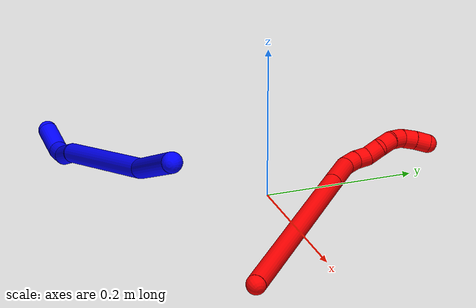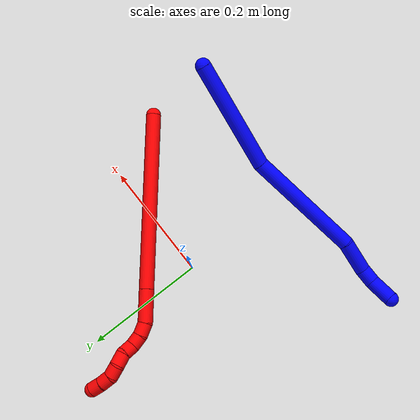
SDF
<sdf version="1.7">
 <world name="default">
  <plugin name="TubeGeneratorPlugin" filename="libtube_generator_plugin.so"/>
  <model name="photoneo_s_sensor">
   <static>1</static>
   <pose>0 0 2 1.57079 1.57079 3.14159</pose>
   <link name="link">
    <inertial><mass>0.1</mass></inertial>
    <sensor name="sensor" type="depth">
     <update_rate>30</update_rate>
     <camera>
      <horizontal_fov>1.22</horizontal_fov>
      <image><width>1920</width><height>1200</height><format>B8G8R8</format></image>
      <clip><near>0.1</near><far>4</far></clip>
      <depth_camera><output>points</output></depth_camera>
     </camera>
     <plugin name="camera_plugin" filename="libgazebo_ros_depth_camera.so">
      <baseline>0.2</baseline>
      <alwaysOn>1</alwaysOn>
      <updateRate>0.0</updateRate>
      <cameraName>camera_ir</cameraName>
      <imageTopicName>/camera/color/image_raw</imageTopicName>
      <cameraInfoTopicName>/camera/color/camera_info</cameraInfoTopicName>
      <depthImageTopicName>/camera/depth/image_raw</depthImageTopicName>
      <depthImageCameraInfoTopicName>/camera/depth/camera_info</depthImageCameraInfoTopicName>
      <pointCloudTopicName>/camera/depth/points</pointCloudTopicName>
      <frameName>fr_optical</frameName>
      <pointCloudCutoff>0.1</pointCloudCutoff>
      <pointCloudCutoffMax>2.0</pointCloudCutoffMax>
      <distortionK1>0</distortionK1>
      <distortionK2>0</distortionK2>
      <distortionK3>0</distortionK3>
      <distortionT1>0</distortionT1>
      <distortionT2>0</distortionT2>
      <CxPrime>0</CxPrime>
      <Cx>0</Cx>
      <Cy>0</Cy>
      <focalLength>0</focalLength>
      <hackBaseline>0</hackBaseline>
     </plugin>
    </sensor>
   </link>
  </model>
  <gravity>0 0 -9.8</gravity>
  <magnetic_field>6e-06 2.3e-05 -4.2e-05</magnetic_field>
  <atmosphere type="adiabatic"/>
  <physics name="default_physics" default="0" type="ode">
   <max_step_size>0.003</max_step_size>
   <real_time_factor>1</real_time_factor>
   <real_time_update_rate>1000</real_time_update_rate>
   <max_contacts>10000</max_contacts>
   <ode>
    <solver>
     <type>quick</type>
     <iters>100</iters>
     <sor>1.3</sor>
     <use_dynamic_moi_rescaling>0</use_dynamic_moi_rescaling>
    </solver>
    <constraints>
     <contact_max_correcting_vel>0</contact_max_correcting_vel>
     <contact_surface_layer>0.001</contact_surface_layer>
     <cfm>0</cfm>
     <erp>0.2</erp>
    </constraints>
   </ode>
  </physics>
  <scene><ambient>0.4 0.4 0.4 1</ambient><background>0.7 0.7 0.7 1</background><shadows>0</shadows></scene>
  <audio><device>default</device></audio>
  <spherical_coordinates>
   <surface_model>EARTH_WGS84</surface_model>
   <latitude_deg>0</latitude_deg>
   <longitude_deg>0</longitude_deg>
   <elevation>0</elevation>
   <heading_deg>0</heading_deg>
  </spherical_coordinates>
  <model name="bin">
   <static>1</static>
   <link name="bottom">
    <collision name="collision-bottom">
     <pose>0 0 -0.01 0 -0 0</pose>
     <geometry><box><size>0.8 0.6 0.02</size></box></geometry>
     <surface>
      <friction><ode><mu>100</mu><mu2>100</mu2></ode></friction>
      <contact><collide_bitmask>65535</collide_bitmask></contact>
     </surface>
    </collision>
   </link>
   <link name="west_wall">
    <collision name="collision-west_wall">
     <pose>-0.41 0 0.1 0 -0 0</pose>
     <geometry><box><size>0.02 0.6 0.2</size></box></geometry>
     <surface>
      <friction><ode><mu>100</mu><mu2>100</mu2></ode></friction>
      <contact><collide_bitmask>65535</collide_bitmask></contact>
     </surface>
    </collision>
   </link>
   <link name="east_wall">
    <collision name="collision-east_wall">
     <pose>0.41 0 0.1 0 -0 0</pose>
     <geometry><box><size>0.02 0.6 0.2</size></box></geometry>
     <surface>
      <friction><ode><mu>100</mu><mu2>100</mu2></ode></friction>
      <contact><collide_bitmask>65535</collide_bitmask></contact>
     </surface>
    </collision>
   </link>
   <link name="south_wall">
    <collision name="collision-south_wall">
     <pose>0 -0.31 0.1 0 -0 0</pose>
     <geometry><box><size>0.8 0.02 0.2</size></box></geometry>
     <surface>
      <friction><ode><mu>100</mu><mu2>100</mu2></ode></friction>
      <contact><collide_bitmask>65535</collide_bitmask></contact>
     </surface>
    </collision>
   </link>
   <link name="north_wall">
    <collision name="collision-north_wall">
     <pose>0 0.31 0.1 0 -0 0</pose>
     <geometry><box><size>0.8 0.02 0.2</size></box></geometry>
     <surface>
      <friction><ode><mu>100</mu><mu2>100</mu2></ode></friction>
      <contact><collide_bitmask>65535</collide_bitmask></contact>
     </surface>
    </collision>
   </link>
  </model>
  <model name="1">
   <static>0</static>
   <link name="1">
    <collision name="collision-cylinder-e_1_1_4">
     <pose>-0.044756 -0.009251 -0.078115 3.02371 -0.517293 -2.70271</pose>
     <geometry><cylinder><radius>0.0125</radius><length>0.181003</length></cylinder></geometry>
     <surface>
      <friction><ode><mu>1.16</mu><mu2>1.16</mu2><slip1>0</slip1><slip2>0</slip2></ode></friction>
      <contact><ode><kp>1e+06</kp><kd>1</kd><max_vel>0</max_vel><min_depth>0.001</min_depth></ode></contact>
     </surface>
    </collision>
    <visual name="visual-cylinder-e_1_1_4">
     <pose>-0.044756 -0.009251 -0.078115 3.02371 -0.517293 -2.70271</pose>
     <geometry><cylinder><radius>0.0125</radius><length>0.181003</length></cylinder></geometry>
     <material><ambient>0 0 1 1</ambient></material>
    </visual>
    <collision name="collision-cylinder-e_2_4_5">
     <pose>-0.15523 -0.007754 -0.226073 -2.98891 -0.749138 2.75726</pose>
     <geometry><cylinder><radius>0.0125</radius><length>0.193005</length></cylinder></geometry>
     <surface>
      <friction><ode><mu>1.16</mu><mu2>1.16</mu2><slip1>0</slip1><slip2>0</slip2></ode></friction>
      <contact><ode><kp>1e+06</kp><kd>1</kd><max_vel>0</max_vel><min_depth>0.001</min_depth></ode></contact>
     </surface>
    </collision>
    <visual name="visual-cylinder-e_2_4_5">
     <pose>-0.15523 -0.007754 -0.226073 -2.98891 -0.749138 2.75726</pose>
     <geometry><cylinder><radius>0.0125</radius><length>0.193005</length></cylinder></geometry>
     <material><ambient>0 0 1 1</ambient></material>
    </visual>
    <collision name="collision-cylinder-e_3_5_6">
     <pose>-0.235871 0.000175 -0.319602 3.02316 -0.559051 -2.73424</pose>
     <geometry><cylinder><radius>0.0125</radius><length>0.056269</length></cylinder></geometry>
     <surface>
      <friction><ode><mu>1.16</mu><mu2>1.16</mu2><slip1>0</slip1><slip2>0</slip2></ode></friction>
      <contact><ode><kp>1e+06</kp><kd>1</kd><max_vel>0</max_vel><min_depth>0.001</min_depth></ode></contact>
     </surface>
    </collision>
    <visual name="visual-cylinder-e_3_5_6">
     <pose>-0.235871 0.000175 -0.319602 3.02316 -0.559051 -2.73424</pose>
     <geometry><cylinder><radius>0.0125</radius><length>0.056269</length></cylinder></geometry>
     <material><ambient>0 0 1 1</ambient></material>
    </visual>
    <collision name="collision-cylinder-e_4_6_7">
     <pose>-0.258182 0.000309 -0.354478 -2.8837 -0.56812 2.30568</pose>
     <geometry><cylinder><radius>0.0125</radius><length>0.027464</length></cylinder></geometry>
     <surface>
      <friction><ode><mu>1.16</mu><mu2>1.16</mu2><slip1>0</slip1><slip2>0</slip2></ode></friction>
      <contact><ode><kp>1e+06</kp><kd>1</kd><max_vel>0</max_vel><min_depth>0.001</min_depth></ode></contact>
     </surface>
    </collision>
    <visual name="visual-cylinder-e_4_6_7">
     <pose>-0.258182 0.000309 -0.354478 -2.8837 -0.56812 2.30568</pose>
     <geometry><cylinder><radius>0.0125</radius><length>0.027464</length></cylinder></geometry>
     <material><ambient>0 0 1 1</ambient></material>
    </visual>
    <collision name="collision-cylinder-e_5_7_2">
     <pose>-0.2745 0.016632 -0.379379 -2.36867 -0.436311 0.997654</pose>
     <geometry><cylinder><radius>0.0125</radius><length>0.042259</length></cylinder></geometry>
     <surface>
      <friction><ode><mu>1.16</mu><mu2>1.16</mu2><slip1>0</slip1><slip2>0</slip2></ode></friction>
      <contact><ode><kp>1e+06</kp><kd>1</kd><max_vel>0</max_vel><min_depth>0.001</min_depth></ode></contact>
     </surface>
    </collision>
    <visual name="visual-cylinder-e_5_7_2">
     <pose>-0.2745 0.016632 -0.379379 -2.36867 -0.436311 0.997654</pose>
     <geometry><cylinder><radius>0.0125</radius><length>0.042259</length></cylinder></geometry>
     <material><ambient>0 0 1 1</ambient></material>
    </visual>
    <collision name="collision-sphere-2">
     <pose>-0.283429 0.030003 -0.393088 0 -0 0</pose>
     <geometry><sphere><radius>0.0125</radius></sphere></geometry>
     <surface>
      <friction><ode><mu>1.16</mu><mu2>1.16</mu2><slip1>0</slip1><slip2>0</slip2></ode></friction>
      <contact><ode><kp>1e+06</kp><kd>1</kd><max_vel>0</max_vel><min_depth>0.001</min_depth></ode></contact>
     </surface>
    </collision>
    <visual name="visual-sphere-2">
     <pose>-0.283429 0.030003 -0.393088 0 -0 0</pose>
     <geometry><sphere><radius>0.0125</radius></sphere></geometry>
     <material><ambient>0 0 1 1</ambient></material>
    </visual>
    <collision name="collision-sphere-7">
     <pose>-0.26557 0.003261 -0.36567 0 -0 0</pose>
     <geometry><sphere><radius>0.0125</radius></sphere></geometry>
     <surface>
      <friction><ode><mu>1.16</mu><mu2>1.16</mu2><slip1>0</slip1><slip2>0</slip2></ode></friction>
      <contact><ode><kp>1e+06</kp><kd>1</kd><max_vel>0</max_vel><min_depth>0.001</min_depth></ode></contact>
     </surface>
    </collision>
    <visual name="visual-sphere-7">
     <pose>-0.26557 0.003261 -0.36567 0 -0 0</pose>
     <geometry><sphere><radius>0.0125</radius></sphere></geometry>
     <material><ambient>0 0 1 1</ambient></material>
    </visual>
    <collision name="collision-sphere-6">
     <pose>-0.250793 -0.002643 -0.343286 0 -0 0</pose>
     <geometry><sphere><radius>0.0125</radius></sphere></geometry>
     <surface>
      <friction><ode><mu>1.16</mu><mu2>1.16</mu2><slip1>0</slip1><slip2>0</slip2></ode></friction>
      <contact><ode><kp>1e+06</kp><kd>1</kd><max_vel>0</max_vel><min_depth>0.001</min_depth></ode></contact>
     </surface>
    </collision>
    <visual name="visual-sphere-6">
     <pose>-0.250793 -0.002643 -0.343286 0 -0 0</pose>
     <geometry><sphere><radius>0.0125</radius></sphere></geometry>
     <material><ambient>0 0 1 1</ambient></material>
    </visual>
    <collision name="collision-sphere-5">
     <pose>-0.220949 0.002993 -0.295918 0 -0 0</pose>
     <geometry><sphere><radius>0.0125</radius></sphere></geometry>
     <surface>
      <friction><ode><mu>1.16</mu><mu2>1.16</mu2><slip1>0</slip1><slip2>0</slip2></ode></friction>
      <contact><ode><kp>1e+06</kp><kd>1</kd><max_vel>0</max_vel><min_depth>0.001</min_depth></ode></contact>
     </surface>
    </collision>
    <visual name="visual-sphere-5">
     <pose>-0.220949 0.002993 -0.295918 0 -0 0</pose>
     <geometry><sphere><radius>0.0125</radius></sphere></geometry>
     <material><ambient>0 0 1 1</ambient></material>
    </visual>
    <collision name="collision-sphere-1">
     <geometry><sphere><radius>0.0125</radius></sphere></geometry>
     <surface>
      <friction><ode><mu>1.16</mu><mu2>1.16</mu2><slip1>0</slip1><slip2>0</slip2></ode></friction>
      <contact><ode><kp>1e+06</kp><kd>1</kd><max_vel>0</max_vel><min_depth>0.001</min_depth></ode></contact>
     </surface>
    </collision>
    <visual name="visual-sphere-1">
     <geometry><sphere><radius>0.0125</radius></sphere></geometry>
     <material><ambient>0 0 1 1</ambient></material>
    </visual>
    <collision name="collision-sphere-4">
     <pose>-0.089511 -0.018502 -0.156229 0 -0 0</pose>
     <geometry><sphere><radius>0.0125</radius></sphere></geometry>
     <surface>
      <friction><ode><mu>1.16</mu><mu2>1.16</mu2><slip1>0</slip1><slip2>0</slip2></ode></friction>
      <contact><ode><kp>1e+06</kp><kd>1</kd><max_vel>0</max_vel><min_depth>0.001</min_depth></ode></contact>
     </surface>
    </collision>
    <visual name="visual-sphere-4">
     <pose>-0.089511 -0.018502 -0.156229 0 -0 0</pose>
     <geometry><sphere><radius>0.0125</radius></sphere></geometry>
     <material><ambient>0 0 1 1</ambient></material>
    </visual>
    <inertial>
     <pose>-0.140048 -0.0049 -0.203047 0 -0 0</pose>
     <mass>0.5</mass>
     <inertia>
      <ixx>-0.000856</ixx>
      <ixy>0</ixy>
      <ixz>0</ixz>
      <iyy>0.001045</iyy>
      <iyz>0</iyz>
      <izz>0.000624</izz>
     </inertia>
    </inertial>
   </link>
   <pose>0.218354 -0.198677 0.168958 1.33371 -0.297366 1.05145</pose>
  </model>
  <model name="2">
   <static>0</static>
   <link name="2">
    <collision name="collision-cylinder-e_1_1_4">
     <pose>-0.077659 0.074988 0.10209 -0.633527 -0.54998 0.184446</pose>
     <geometry><cylinder><radius>0.0125</radius><length>0.297163</length></cylinder></geometry>
     <surface>
      <friction><ode><mu>1.16</mu><mu2>1.16</mu2><slip1>0</slip1><slip2>0</slip2></ode></friction>
      <contact><ode><kp>1e+06</kp><kd>1</kd><max_vel>0</max_vel><min_depth>0.001</min_depth></ode></contact>
     </surface>
    </collision>
    <visual name="visual-cylinder-e_1_1_4">
     <pose>-0.077659 0.074988 0.10209 -0.633527 -0.54998 0.184446</pose>
     <geometry><cylinder><radius>0.0125</radius><length>0.297163</length></cylinder></geometry>
     <material><ambient>1 0 0 1</ambient></material>
    </visual>
    <collision name="collision-cylinder-e_2_4_5">
     <pose>-0.170266 0.163968 0.223459 -0.627806 -0.560379 0.186294</pose>
     <geometry><cylinder><radius>0.0125</radius><length>0.056247</length></cylinder></geometry>
     <surface>
      <friction><ode><mu>1.16</mu><mu2>1.16</mu2><slip1>0</slip1><slip2>0</slip2></ode></friction>
      <contact><ode><kp>1e+06</kp><kd>1</kd><max_vel>0</max_vel><min_depth>0.001</min_depth></ode></contact>
     </surface>
    </collision>
    <visual name="visual-cylinder-e_2_4_5">
     <pose>-0.170266 0.163968 0.223459 -0.627806 -0.560379 0.186294</pose>
     <geometry><cylinder><radius>0.0125</radius><length>0.056247</length></cylinder></geometry>
     <material><ambient>1 0 0 1</ambient></material>
    </visual>
    <collision name="collision-cylinder-e_3_5_6">
     <pose>-0.190695 0.186316 0.247665 -1.038 -0.514403 0.29827</pose>
     <geometry><cylinder><radius>0.0125</radius><length>0.022282</length></cylinder></geometry>
     <surface>
      <friction><ode><mu>1.16</mu><mu2>1.16</mu2><slip1>0</slip1><slip2>0</slip2></ode></friction>
      <contact><ode><kp>1e+06</kp><kd>1</kd><max_vel>0</max_vel><min_depth>0.001</min_depth></ode></contact>
     </surface>
    </collision>
    <visual name="visual-cylinder-e_3_5_6">
     <pose>-0.190695 0.186316 0.247665 -1.038 -0.514403 0.29827</pose>
     <geometry><cylinder><radius>0.0125</radius><length>0.022282</length></cylinder></geometry>
     <material><ambient>1 0 0 1</ambient></material>
    </visual>
    <collision name="collision-cylinder-e_4_6_7">
     <pose>-0.201369 0.203463 0.254604 -1.34584 -0.522334 0.419766</pose>
     <geometry><cylinder><radius>0.0125</radius><length>0.020815</length></cylinder></geometry>
     <surface>
      <friction><ode><mu>1.16</mu><mu2>1.16</mu2><slip1>0</slip1><slip2>0</slip2></ode></friction>
      <contact><ode><kp>1e+06</kp><kd>1</kd><max_vel>0</max_vel><min_depth>0.001</min_depth></ode></contact>
     </surface>
    </collision>
    <visual name="visual-cylinder-e_4_6_7">
     <pose>-0.201369 0.203463 0.254604 -1.34584 -0.522334 0.419766</pose>
     <geometry><cylinder><radius>0.0125</radius><length>0.020815</length></cylinder></geometry>
     <material><ambient>1 0 0 1</ambient></material>
    </visual>
    <collision name="collision-cylinder-e_5_7_8">
     <pose>-0.206967 0.222531 0.258296 -1.4087 -0.038885 0.033044</pose>
     <geometry><cylinder><radius>0.0125</radius><length>0.02084</length></cylinder></geometry>
     <surface>
      <friction><ode><mu>1.16</mu><mu2>1.16</mu2><slip1>0</slip1><slip2>0</slip2></ode></friction>
      <contact><ode><kp>1e+06</kp><kd>1</kd><max_vel>0</max_vel><min_depth>0.001</min_depth></ode></contact>
     </surface>
    </collision>
    <visual name="visual-cylinder-e_5_7_8">
     <pose>-0.206967 0.222531 0.258296 -1.4087 -0.038885 0.033044</pose>
     <geometry><cylinder><radius>0.0125</radius><length>0.02084</length></cylinder></geometry>
     <material><ambient>1 0 0 1</ambient></material>
    </visual>
    <collision name="collision-cylinder-e_6_8_9">
     <pose>-0.211674 0.242023 0.264257 -1.13602 -0.400475 0.257606</pose>
     <geometry><cylinder><radius>0.0125</radius><length>0.022071</length></cylinder></geometry>
     <surface>
      <friction><ode><mu>1.16</mu><mu2>1.16</mu2><slip1>0</slip1><slip2>0</slip2></ode></friction>
      <contact><ode><kp>1e+06</kp><kd>1</kd><max_vel>0</max_vel><min_depth>0.001</min_depth></ode></contact>
     </surface>
    </collision>
    <visual name="visual-cylinder-e_6_8_9">
     <pose>-0.211674 0.242023 0.264257 -1.13602 -0.400475 0.257606</pose>
     <geometry><cylinder><radius>0.0125</radius><length>0.022071</length></cylinder></geometry>
     <material><ambient>1 0 0 1</ambient></material>
    </visual>
    <collision name="collision-cylinder-e_7_9_10">
     <pose>-0.222432 0.258647 0.271078 -1.24045 -0.689496 0.502133</pose>
     <geometry><cylinder><radius>0.0125</radius><length>0.020296</length></cylinder></geometry>
     <surface>
      <friction><ode><mu>1.16</mu><mu2>1.16</mu2><slip1>0</slip1><slip2>0</slip2></ode></friction>
      <contact><ode><kp>1e+06</kp><kd>1</kd><max_vel>0</max_vel><min_depth>0.001</min_depth></ode></contact>
     </surface>
    </collision>
    <visual name="visual-cylinder-e_7_9_10">
     <pose>-0.222432 0.258647 0.271078 -1.24045 -0.689496 0.502133</pose>
     <geometry><cylinder><radius>0.0125</radius><length>0.020296</length></cylinder></geometry>
     <material><ambient>1 0 0 1</ambient></material>
    </visual>
    <collision name="collision-cylinder-e_8_10_11">
     <pose>-0.235424 0.273563 0.271981 -1.78539 -0.704741 0.856478</pose>
     <geometry><cylinder><radius>0.0125</radius><length>0.020178</length></cylinder></geometry>
     <surface>
      <friction><ode><mu>1.16</mu><mu2>1.16</mu2><slip1>0</slip1><slip2>0</slip2></ode></friction>
      <contact><ode><kp>1e+06</kp><kd>1</kd><max_vel>0</max_vel><min_depth>0.001</min_depth></ode></contact>
     </surface>
    </collision>
    <visual name="visual-cylinder-e_8_10_11">
     <pose>-0.235424 0.273563 0.271981 -1.78539 -0.704741 0.856478</pose>
     <geometry><cylinder><radius>0.0125</radius><length>0.020178</length></cylinder></geometry>
     <material><ambient>1 0 0 1</ambient></material>
    </visual>
    <collision name="collision-cylinder-e_9_11_2">
     <pose>-0.248573 0.288091 0.267501 -1.95568 -0.717814 1.016</pose>
     <geometry><cylinder><radius>0.0125</radius><length>0.020108</length></cylinder></geometry>
     <surface>
      <friction><ode><mu>1.16</mu><mu2>1.16</mu2><slip1>0</slip1><slip2>0</slip2></ode></friction>
      <contact><ode><kp>1e+06</kp><kd>1</kd><max_vel>0</max_vel><min_depth>0.001</min_depth></ode></contact>
     </surface>
    </collision>
    <visual name="visual-cylinder-e_9_11_2">
     <pose>-0.248573 0.288091 0.267501 -1.95568 -0.717814 1.016</pose>
     <geometry><cylinder><radius>0.0125</radius><length>0.020108</length></cylinder></geometry>
     <material><ambient>1 0 0 1</ambient></material>
    </visual>
    <collision name="collision-sphere-2">
     <pose>-0.255185 0.29511 0.264657 0 -0 0</pose>
     <geometry><sphere><radius>0.0125</radius></sphere></geometry>
     <surface>
      <friction><ode><mu>1.16</mu><mu2>1.16</mu2><slip1>0</slip1><slip2>0</slip2></ode></friction>
      <contact><ode><kp>1e+06</kp><kd>1</kd><max_vel>0</max_vel><min_depth>0.001</min_depth></ode></contact>
     </surface>
    </collision>
    <visual name="visual-sphere-2">
     <pose>-0.255185 0.29511 0.264657 0 -0 0</pose>
     <geometry><sphere><radius>0.0125</radius></sphere></geometry>
     <material><ambient>1 0 0 1</ambient></material>
    </visual>
    <collision name="collision-sphere-11">
     <pose>-0.24196 0.281072 0.270344 0 -0 0</pose>
     <geometry><sphere><radius>0.0125</radius></sphere></geometry>
     <surface>
      <friction><ode><mu>1.16</mu><mu2>1.16</mu2><slip1>0</slip1><slip2>0</slip2></ode></friction>
      <contact><ode><kp>1e+06</kp><kd>1</kd><max_vel>0</max_vel><min_depth>0.001</min_depth></ode></contact>
     </surface>
    </collision>
    <visual name="visual-sphere-11">
     <pose>-0.24196 0.281072 0.270344 0 -0 0</pose>
     <geometry><sphere><radius>0.0125</radius></sphere></geometry>
     <material><ambient>1 0 0 1</ambient></material>
    </visual>
    <collision name="collision-sphere-10">
     <pose>-0.228887 0.266053 0.273617 0 -0 0</pose>
     <geometry><sphere><radius>0.0125</radius></sphere></geometry>
     <surface>
      <friction><ode><mu>1.16</mu><mu2>1.16</mu2><slip1>0</slip1><slip2>0</slip2></ode></friction>
      <contact><ode><kp>1e+06</kp><kd>1</kd><max_vel>0</max_vel><min_depth>0.001</min_depth></ode></contact>
     </surface>
    </collision>
    <visual name="visual-sphere-10">
     <pose>-0.228887 0.266053 0.273617 0 -0 0</pose>
     <geometry><sphere><radius>0.0125</radius></sphere></geometry>
     <material><ambient>1 0 0 1</ambient></material>
    </visual>
    <collision name="collision-sphere-9">
     <pose>-0.215976 0.251241 0.268538 0 -0 0</pose>
     <geometry><sphere><radius>0.0125</radius></sphere></geometry>
     <surface>
      <friction><ode><mu>1.16</mu><mu2>1.16</mu2><slip1>0</slip1><slip2>0</slip2></ode></friction>
      <contact><ode><kp>1e+06</kp><kd>1</kd><max_vel>0</max_vel><min_depth>0.001</min_depth></ode></contact>
     </surface>
    </collision>
    <visual name="visual-sphere-9">
     <pose>-0.215976 0.251241 0.268538 0 -0 0</pose>
     <geometry><sphere><radius>0.0125</radius></sphere></geometry>
     <material><ambient>1 0 0 1</ambient></material>
    </visual>
    <collision name="collision-sphere-4">
     <pose>-0.155318 0.149976 0.204179 0 -0 0</pose>
     <geometry><sphere><radius>0.0125</radius></sphere></geometry>
     <surface>
      <friction><ode><mu>1.16</mu><mu2>1.16</mu2><slip1>0</slip1><slip2>0</slip2></ode></friction>
      <contact><ode><kp>1e+06</kp><kd>1</kd><max_vel>0</max_vel><min_depth>0.001</min_depth></ode></contact>
     </surface>
    </collision>
    <visual name="visual-sphere-4">
     <pose>-0.155318 0.149976 0.204179 0 -0 0</pose>
     <geometry><sphere><radius>0.0125</radius></sphere></geometry>
     <material><ambient>1 0 0 1</ambient></material>
    </visual>
    <collision name="collision-sphere-1">
     <geometry><sphere><radius>0.0125</radius></sphere></geometry>
     <surface>
      <friction><ode><mu>1.16</mu><mu2>1.16</mu2><slip1>0</slip1><slip2>0</slip2></ode></friction>
      <contact><ode><kp>1e+06</kp><kd>1</kd><max_vel>0</max_vel><min_depth>0.001</min_depth></ode></contact>
     </surface>
    </collision>
    <visual name="visual-sphere-1">
     <geometry><sphere><radius>0.0125</radius></sphere></geometry>
     <material><ambient>1 0 0 1</ambient></material>
    </visual>
    <collision name="collision-sphere-8">
     <pose>-0.207372 0.232806 0.259977 0 -0 0</pose>
     <geometry><sphere><radius>0.0125</radius></sphere></geometry>
     <surface>
      <friction><ode><mu>1.16</mu><mu2>1.16</mu2><slip1>0</slip1><slip2>0</slip2></ode></friction>
      <contact><ode><kp>1e+06</kp><kd>1</kd><max_vel>0</max_vel><min_depth>0.001</min_depth></ode></contact>
     </surface>
    </collision>
    <visual name="visual-sphere-8">
     <pose>-0.207372 0.232806 0.259977 0 -0 0</pose>
     <geometry><sphere><radius>0.0125</radius></sphere></geometry>
     <material><ambient>1 0 0 1</ambient></material>
    </visual>
    <collision name="collision-sphere-5">
     <pose>-0.185214 0.177961 0.242739 0 -0 0</pose>
     <geometry><sphere><radius>0.0125</radius></sphere></geometry>
     <surface>
      <friction><ode><mu>1.16</mu><mu2>1.16</mu2><slip1>0</slip1><slip2>0</slip2></ode></friction>
      <contact><ode><kp>1e+06</kp><kd>1</kd><max_vel>0</max_vel><min_depth>0.001</min_depth></ode></contact>
     </surface>
    </collision>
    <visual name="visual-sphere-5">
     <pose>-0.185214 0.177961 0.242739 0 -0 0</pose>
     <geometry><sphere><radius>0.0125</radius></sphere></geometry>
     <material><ambient>1 0 0 1</ambient></material>
    </visual>
    <collision name="collision-sphere-6">
     <pose>-0.196177 0.19467 0.252592 0 -0 0</pose>
     <geometry><sphere><radius>0.0125</radius></sphere></geometry>
     <surface>
      <friction><ode><mu>1.16</mu><mu2>1.16</mu2><slip1>0</slip1><slip2>0</slip2></ode></friction>
      <contact><ode><kp>1e+06</kp><kd>1</kd><max_vel>0</max_vel><min_depth>0.001</min_depth></ode></contact>
     </surface>
    </collision>
    <visual name="visual-sphere-6">
     <pose>-0.196177 0.19467 0.252592 0 -0 0</pose>
     <geometry><sphere><radius>0.0125</radius></sphere></geometry>
     <material><ambient>1 0 0 1</ambient></material>
    </visual>
    <collision name="collision-sphere-7">
     <pose>-0.206561 0.212255 0.256616 0 -0 0</pose>
     <geometry><sphere><radius>0.0125</radius></sphere></geometry>
     <surface>
      <friction><ode><mu>1.16</mu><mu2>1.16</mu2><slip1>0</slip1><slip2>0</slip2></ode></friction>
      <contact><ode><kp>1e+06</kp><kd>1</kd><max_vel>0</max_vel><min_depth>0.001</min_depth></ode></contact>
     </surface>
    </collision>
    <visual name="visual-sphere-7">
     <pose>-0.206561 0.212255 0.256616 0 -0 0</pose>
     <geometry><sphere><radius>0.0125</radius></sphere></geometry>
     <material><ambient>1 0 0 1</ambient></material>
    </visual>
    <inertial>
     <pose>-0.128686 0.132869 0.162617 0 -0 0</pose>
     <mass>0.5</mass>
     <inertia>
      <ixx>0.002195</ixx>
      <ixy>0</ixy>
      <ixz>0</ixz>
      <iyy>0.002259</iyy>
      <iyz>0</iyz>
      <izz>5.7e-05</izz>
     </inertia>
    </inertial>
   </link>
   <pose>0.246469 -0.107579 0.012374 0.938734 -0.998572 -0.952166</pose>
  </model>
 </world>
</sdf>
